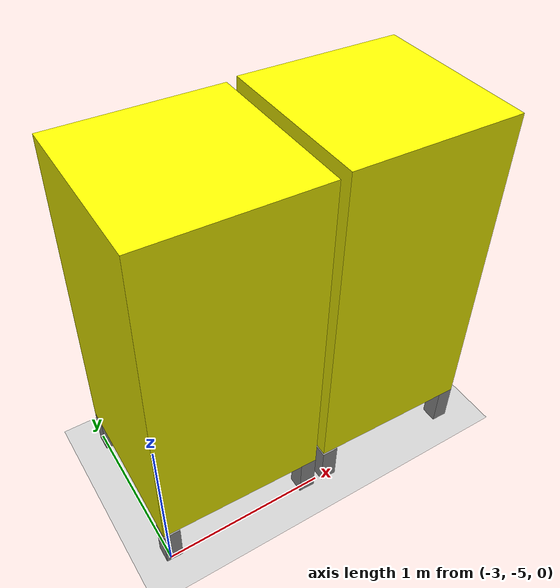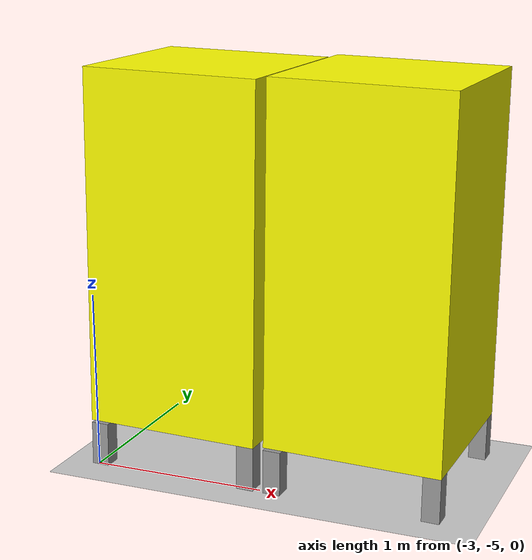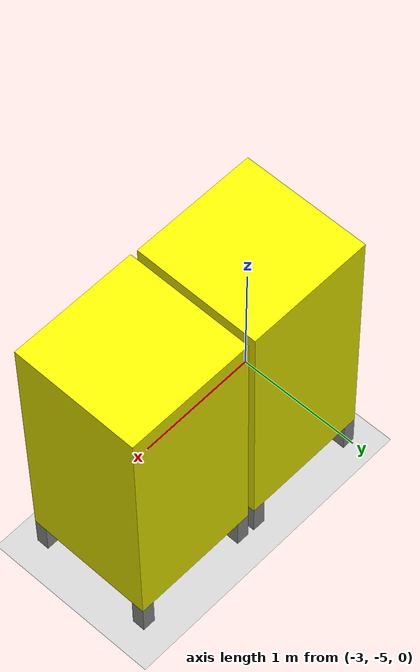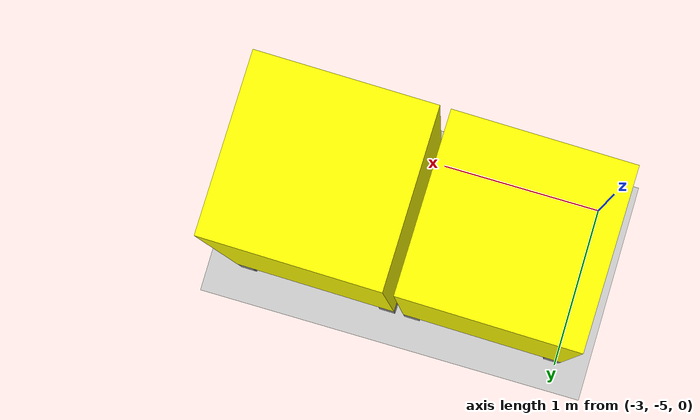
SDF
<sdf version="1.6">
 <world name="default">
  <model name="ground_plane">
   <static>1</static>
   <link name="link">
    <collision name="collision">
     <geometry><plane><normal>0 0 1</normal><size>100 100</size></plane></geometry>
     <surface>
      <contact><collide_bitmask>65535</collide_bitmask></contact>
      <friction><ode><mu>100</mu><mu2>50</mu2></ode></friction>
     </surface>
    </collision>
    <visual name="visual">
     <cast_shadows>0</cast_shadows>
     <geometry><plane><normal>0 0 1</normal><size>100 100</size></plane></geometry>
     <material>
      <script><uri>file://media/materials/scripts/gazebo.material</uri><name>Gazebo/Grey</name></script>
     </material>
    </visual>
   </link>
  </model>
  <model name="StoragePod_clone_4">
   <link name="link_2">
    <inertial>
     <mass>1</mass>
     <inertia>
      <ixx>0.166667</ixx>
      <ixy>0</ixy>
      <ixz>0</ixz>
      <iyy>0.166667</iyy>
      <iyz>0</iyz>
      <izz>0.166667</izz>
     </inertia>
    </inertial>
    <pose>-0.45 -0.45 -0.237 0 -0 0</pose>
    <visual name="visual">
     <geometry><box><size>0.1 0.1 0.25</size></box></geometry>
     <material>
      <lighting>1</lighting>
      <script><uri>file://media/materials/scripts/gazebo.material</uri><name>Gazebo/Grey</name></script>
      <shader type="pixel"><normal_map>__default__</normal_map></shader>
      <ambient>0.3 0.3 0.3 1</ambient>
      <diffuse>0.7 0.7 0.7 1</diffuse>
      <specular>0.01 0.01 0.01 1</specular>
      <emissive>0 0 0 1</emissive>
     </material>
    </visual>
    <collision name="collision">
     <geometry><box><size>0.1 0.1 0.25</size></box></geometry>
     <surface>
      <friction>
       <ode><mu>1</mu><mu2>1</mu2><fdir1>0 0 0</fdir1><slip1>0</slip1><slip2>0</slip2></ode>
       <torsional>
        <coefficient>1</coefficient>
        <patch_radius>0</patch_radius>
        <surface_radius>0</surface_radius>
        <use_patch_radius>1</use_patch_radius>
        <ode><slip>0</slip></ode>
       </torsional>
      </friction>
      <bounce><restitution_coefficient>0</restitution_coefficient><threshold>1e+06</threshold></bounce>
      <contact>
       <collide_without_contact>0</collide_without_contact>
       <collide_without_contact_bitmask>1</collide_without_contact_bitmask>
       <collide_bitmask>1</collide_bitmask>
       <ode>
        <soft_cfm>0</soft_cfm>
        <soft_erp>0.2</soft_erp>
        <kp>1e+13</kp>
        <kd>1</kd>
        <max_vel>0.01</max_vel>
        <min_depth>0</min_depth>
       </ode>
       <bullet>
        <split_impulse>1</split_impulse>
        <split_impulse_penetration_threshold>-0.01</split_impulse_penetration_threshold>
        <soft_cfm>0</soft_cfm>
        <soft_erp>0.2</soft_erp>
        <kp>1e+13</kp>
        <kd>1</kd>
       </bullet>
      </contact>
     </surface>
    </collision>
   </link>
   <link name="link_2_clone">
    <inertial>
     <mass>1</mass>
     <inertia>
      <ixx>0.166667</ixx>
      <ixy>0</ixy>
      <ixz>0</ixz>
      <iyy>0.166667</iyy>
      <iyz>0</iyz>
      <izz>0.166667</izz>
     </inertia>
    </inertial>
    <pose>0.45 0.45 -0.222 0 -0 0</pose>
    <visual name="visual">
     <geometry><box><size>0.1 0.1 0.25</size></box></geometry>
     <material>
      <lighting>1</lighting>
      <script><uri>file://media/materials/scripts/gazebo.material</uri><name>Gazebo/Grey</name></script>
      <shader type="pixel"><normal_map>__default__</normal_map></shader>
      <ambient>0.3 0.3 0.3 1</ambient>
      <diffuse>0.7 0.7 0.7 1</diffuse>
      <specular>0.01 0.01 0.01 1</specular>
      <emissive>0 0 0 1</emissive>
     </material>
    </visual>
    <collision name="collision">
     <geometry><box><size>0.1 0.1 0.25</size></box></geometry>
     <surface>
      <friction>
       <ode><mu>1</mu><mu2>1</mu2><fdir1>0 0 0</fdir1><slip1>0</slip1><slip2>0</slip2></ode>
       <torsional>
        <coefficient>1</coefficient>
        <patch_radius>0</patch_radius>
        <surface_radius>0</surface_radius>
        <use_patch_radius>1</use_patch_radius>
        <ode><slip>0</slip></ode>
       </torsional>
      </friction>
      <bounce><restitution_coefficient>0</restitution_coefficient><threshold>1e+06</threshold></bounce>
      <contact>
       <collide_without_contact>0</collide_without_contact>
       <collide_without_contact_bitmask>1</collide_without_contact_bitmask>
       <collide_bitmask>1</collide_bitmask>
       <ode>
        <soft_cfm>0</soft_cfm>
        <soft_erp>0.2</soft_erp>
        <kp>1e+13</kp>
        <kd>1</kd>
        <max_vel>0.01</max_vel>
        <min_depth>0</min_depth>
       </ode>
       <bullet>
        <split_impulse>1</split_impulse>
        <split_impulse_penetration_threshold>-0.01</split_impulse_penetration_threshold>
        <soft_cfm>0</soft_cfm>
        <soft_erp>0.2</soft_erp>
        <kp>1e+13</kp>
        <kd>1</kd>
       </bullet>
      </contact>
     </surface>
    </collision>
   </link>
   <link name="link_2_clone_0">
    <inertial>
     <mass>1</mass>
     <inertia>
      <ixx>0.166667</ixx>
      <ixy>0</ixy>
      <ixz>0</ixz>
      <iyy>0.166667</iyy>
      <iyz>0</iyz>
      <izz>0.166667</izz>
     </inertia>
    </inertial>
    <pose>0.45 -0.45 -0.222 0 -0 0</pose>
    <visual name="visual">
     <geometry><box><size>0.1 0.1 0.25</size></box></geometry>
     <material>
      <lighting>1</lighting>
      <script><uri>file://media/materials/scripts/gazebo.material</uri><name>Gazebo/Grey</name></script>
      <shader type="pixel"><normal_map>__default__</normal_map></shader>
      <ambient>0.3 0.3 0.3 1</ambient>
      <diffuse>0.7 0.7 0.7 1</diffuse>
      <specular>0.01 0.01 0.01 1</specular>
      <emissive>0 0 0 1</emissive>
     </material>
    </visual>
    <collision name="collision">
     <geometry><box><size>0.1 0.1 0.25</size></box></geometry>
     <surface>
      <friction>
       <ode><mu>1</mu><mu2>1</mu2><fdir1>0 0 0</fdir1><slip1>0</slip1><slip2>0</slip2></ode>
       <torsional>
        <coefficient>1</coefficient>
        <patch_radius>0</patch_radius>
        <surface_radius>0</surface_radius>
        <use_patch_radius>1</use_patch_radius>
        <ode><slip>0</slip></ode>
       </torsional>
      </friction>
      <bounce><restitution_coefficient>0</restitution_coefficient><threshold>1e+06</threshold></bounce>
      <contact>
       <collide_without_contact>0</collide_without_contact>
       <collide_without_contact_bitmask>1</collide_without_contact_bitmask>
       <collide_bitmask>1</collide_bitmask>
       <ode>
        <soft_cfm>0</soft_cfm>
        <soft_erp>0.2</soft_erp>
        <kp>1e+13</kp>
        <kd>1</kd>
        <max_vel>0.01</max_vel>
        <min_depth>0</min_depth>
       </ode>
       <bullet>
        <split_impulse>1</split_impulse>
        <split_impulse_penetration_threshold>-0.01</split_impulse_penetration_threshold>
        <soft_cfm>0</soft_cfm>
        <soft_erp>0.2</soft_erp>
        <kp>1e+13</kp>
        <kd>1</kd>
       </bullet>
      </contact>
     </surface>
    </collision>
   </link>
   <link name="link_2_clone_1">
    <inertial>
     <mass>1</mass>
     <inertia>
      <ixx>0.166667</ixx>
      <ixy>0</ixy>
      <ixz>0</ixz>
      <iyy>0.166667</iyy>
      <iyz>0</iyz>
      <izz>0.166667</izz>
     </inertia>
    </inertial>
    <pose>-0.45 0.45 -0.222 0 -0 0</pose>
    <visual name="visual">
     <geometry><box><size>0.1 0.1 0.25</size></box></geometry>
     <material>
      <lighting>1</lighting>
      <script><uri>file://media/materials/scripts/gazebo.material</uri><name>Gazebo/Grey</name></script>
      <shader type="pixel"><normal_map>__default__</normal_map></shader>
      <ambient>0.3 0.3 0.3 1</ambient>
      <diffuse>0.7 0.7 0.7 1</diffuse>
      <specular>0.01 0.01 0.01 1</specular>
      <emissive>0 0 0 1</emissive>
     </material>
    </visual>
    <collision name="collision">
     <geometry><box><size>0.1 0.1 0.25</size></box></geometry>
     <surface>
      <friction>
       <ode><mu>1</mu><mu2>1</mu2><fdir1>0 0 0</fdir1><slip1>0</slip1><slip2>0</slip2></ode>
       <torsional>
        <coefficient>1</coefficient>
        <patch_radius>0</patch_radius>
        <surface_radius>0</surface_radius>
        <use_patch_radius>1</use_patch_radius>
        <ode><slip>0</slip></ode>
       </torsional>
      </friction>
      <bounce><restitution_coefficient>0</restitution_coefficient><threshold>1e+06</threshold></bounce>
      <contact>
       <collide_without_contact>0</collide_without_contact>
       <collide_without_contact_bitmask>1</collide_without_contact_bitmask>
       <collide_bitmask>1</collide_bitmask>
       <ode>
        <soft_cfm>0</soft_cfm>
        <soft_erp>0.2</soft_erp>
        <kp>1e+13</kp>
        <kd>1</kd>
        <max_vel>0.01</max_vel>
        <min_depth>0</min_depth>
       </ode>
       <bullet>
        <split_impulse>1</split_impulse>
        <split_impulse_penetration_threshold>-0.01</split_impulse_penetration_threshold>
        <soft_cfm>0</soft_cfm>
        <soft_erp>0.2</soft_erp>
        <kp>1e+13</kp>
        <kd>1</kd>
       </bullet>
      </contact>
     </surface>
    </collision>
   </link>
   <link name="link_3">
    <inertial>
     <mass>1</mass>
     <inertia>
      <ixx>0.166667</ixx>
      <ixy>0</ixy>
      <ixz>0</ixz>
      <iyy>0.166667</iyy>
      <iyz>0</iyz>
      <izz>0.166667</izz>
     </inertia>
    </inertial>
    <pose>0 0 0.903 0 -0 0</pose>
    <visual name="visual">
     <geometry><box><size>1 1 2</size></box></geometry>
     <material>
      <lighting>1</lighting>
      <script><uri>file://media/materials/scripts/gazebo.material</uri><name>Gazebo/Grey</name></script>
      <shader type="pixel"><normal_map>__default__</normal_map></shader>
      <ambient>1 1 0 1</ambient>
      <diffuse>1 1 0 1</diffuse>
      <specular>0.01 0.01 0.01 1</specular>
      <emissive>0 0 0 1</emissive>
     </material>
    </visual>
    <collision name="collision">
     <geometry><box><size>1 1 2</size></box></geometry>
     <surface>
      <friction>
       <ode><mu>1</mu><mu2>1</mu2><fdir1>0 0 0</fdir1><slip1>0</slip1><slip2>0</slip2></ode>
       <torsional>
        <coefficient>1</coefficient>
        <patch_radius>0</patch_radius>
        <surface_radius>0</surface_radius>
        <use_patch_radius>1</use_patch_radius>
        <ode><slip>0</slip></ode>
       </torsional>
      </friction>
      <bounce><restitution_coefficient>0</restitution_coefficient><threshold>1e+06</threshold></bounce>
      <contact>
       <collide_without_contact>0</collide_without_contact>
       <collide_without_contact_bitmask>1</collide_without_contact_bitmask>
       <collide_bitmask>1</collide_bitmask>
       <ode>
        <soft_cfm>0</soft_cfm>
        <soft_erp>0.2</soft_erp>
        <kp>1e+13</kp>
        <kd>1</kd>
        <max_vel>0.01</max_vel>
        <min_depth>0</min_depth>
       </ode>
       <bullet>
        <split_impulse>1</split_impulse>
        <split_impulse_penetration_threshold>-0.01</split_impulse_penetration_threshold>
        <soft_cfm>0</soft_cfm>
        <soft_erp>0.2</soft_erp>
        <kp>1e+13</kp>
        <kd>1</kd>
       </bullet>
      </contact>
     </surface>
    </collision>
   </link>
   <joint name="link_3_JOINT_0" type="fixed">
    <parent>link_3</parent>
    <child>link_2_clone_0</child>
    <physics>
     <ode><limit><cfm>0</cfm><erp>0.2</erp></limit><suspension><cfm>0</cfm><erp>0.2</erp></suspension></ode>
    </physics>
   </joint>
   <joint name="link_3_JOINT_1" type="fixed">
    <parent>link_3</parent>
    <child>link_2</child>
    <physics>
     <ode><limit><cfm>0</cfm><erp>0.2</erp></limit><suspension><cfm>0</cfm><erp>0.2</erp></suspension></ode>
    </physics>
   </joint>
   <joint name="link_3_JOINT_2" type="fixed">
    <parent>link_3</parent>
    <child>link_2_clone</child>
    <physics>
     <ode><limit><cfm>0</cfm><erp>0.2</erp></limit><suspension><cfm>0</cfm><erp>0.2</erp></suspension></ode>
    </physics>
   </joint>
   <joint name="link_3_JOINT_3" type="fixed">
    <parent>link_3</parent>
    <child>link_2_clone_1</child>
    <physics>
     <ode><limit><cfm>0</cfm><erp>0.2</erp></limit><suspension><cfm>0</cfm><erp>0.2</erp></suspension></ode>
    </physics>
   </joint>
   <static>0</static>
   <pose>-2.52075 -4.5211 0.355283 -6.8e-05 0.016601 -0.012292</pose>
  </model>
  <model name="StoragePod_clone_5">
   <link name="link_2">
    <inertial>
     <mass>1</mass>
     <inertia>
      <ixx>0.166667</ixx>
      <ixy>0</ixy>
      <ixz>0</ixz>
      <iyy>0.166667</iyy>
      <iyz>0</iyz>
      <izz>0.166667</izz>
     </inertia>
    </inertial>
    <pose>-0.45 -0.45 -0.237 0 -0 0</pose>
    <visual name="visual">
     <geometry><box><size>0.1 0.1 0.25</size></box></geometry>
     <material>
      <lighting>1</lighting>
      <script><uri>file://media/materials/scripts/gazebo.material</uri><name>Gazebo/Grey</name></script>
      <shader type="pixel"><normal_map>__default__</normal_map></shader>
      <ambient>0.3 0.3 0.3 1</ambient>
      <diffuse>0.7 0.7 0.7 1</diffuse>
      <specular>0.01 0.01 0.01 1</specular>
      <emissive>0 0 0 1</emissive>
     </material>
    </visual>
    <collision name="collision">
     <geometry><box><size>0.1 0.1 0.25</size></box></geometry>
     <surface>
      <friction>
       <ode><mu>1</mu><mu2>1</mu2><fdir1>0 0 0</fdir1><slip1>0</slip1><slip2>0</slip2></ode>
       <torsional>
        <coefficient>1</coefficient>
        <patch_radius>0</patch_radius>
        <surface_radius>0</surface_radius>
        <use_patch_radius>1</use_patch_radius>
        <ode><slip>0</slip></ode>
       </torsional>
      </friction>
      <bounce><restitution_coefficient>0</restitution_coefficient><threshold>1e+06</threshold></bounce>
      <contact>
       <collide_without_contact>0</collide_without_contact>
       <collide_without_contact_bitmask>1</collide_without_contact_bitmask>
       <collide_bitmask>1</collide_bitmask>
       <ode>
        <soft_cfm>0</soft_cfm>
        <soft_erp>0.2</soft_erp>
        <kp>1e+13</kp>
        <kd>1</kd>
        <max_vel>0.01</max_vel>
        <min_depth>0</min_depth>
       </ode>
       <bullet>
        <split_impulse>1</split_impulse>
        <split_impulse_penetration_threshold>-0.01</split_impulse_penetration_threshold>
        <soft_cfm>0</soft_cfm>
        <soft_erp>0.2</soft_erp>
        <kp>1e+13</kp>
        <kd>1</kd>
       </bullet>
      </contact>
     </surface>
    </collision>
   </link>
   <link name="link_2_clone">
    <inertial>
     <mass>1</mass>
     <inertia>
      <ixx>0.166667</ixx>
      <ixy>0</ixy>
      <ixz>0</ixz>
      <iyy>0.166667</iyy>
      <iyz>0</iyz>
      <izz>0.166667</izz>
     </inertia>
    </inertial>
    <pose>0.45 0.45 -0.222 0 -0 0</pose>
    <visual name="visual">
     <geometry><box><size>0.1 0.1 0.25</size></box></geometry>
     <material>
      <lighting>1</lighting>
      <script><uri>file://media/materials/scripts/gazebo.material</uri><name>Gazebo/Grey</name></script>
      <shader type="pixel"><normal_map>__default__</normal_map></shader>
      <ambient>0.3 0.3 0.3 1</ambient>
      <diffuse>0.7 0.7 0.7 1</diffuse>
      <specular>0.01 0.01 0.01 1</specular>
      <emissive>0 0 0 1</emissive>
     </material>
    </visual>
    <collision name="collision">
     <geometry><box><size>0.1 0.1 0.25</size></box></geometry>
     <surface>
      <friction>
       <ode><mu>1</mu><mu2>1</mu2><fdir1>0 0 0</fdir1><slip1>0</slip1><slip2>0</slip2></ode>
       <torsional>
        <coefficient>1</coefficient>
        <patch_radius>0</patch_radius>
        <surface_radius>0</surface_radius>
        <use_patch_radius>1</use_patch_radius>
        <ode><slip>0</slip></ode>
       </torsional>
      </friction>
      <bounce><restitution_coefficient>0</restitution_coefficient><threshold>1e+06</threshold></bounce>
      <contact>
       <collide_without_contact>0</collide_without_contact>
       <collide_without_contact_bitmask>1</collide_without_contact_bitmask>
       <collide_bitmask>1</collide_bitmask>
       <ode>
        <soft_cfm>0</soft_cfm>
        <soft_erp>0.2</soft_erp>
        <kp>1e+13</kp>
        <kd>1</kd>
        <max_vel>0.01</max_vel>
        <min_depth>0</min_depth>
       </ode>
       <bullet>
        <split_impulse>1</split_impulse>
        <split_impulse_penetration_threshold>-0.01</split_impulse_penetration_threshold>
        <soft_cfm>0</soft_cfm>
        <soft_erp>0.2</soft_erp>
        <kp>1e+13</kp>
        <kd>1</kd>
       </bullet>
      </contact>
     </surface>
    </collision>
   </link>
   <link name="link_2_clone_0">
    <inertial>
     <mass>1</mass>
     <inertia>
      <ixx>0.166667</ixx>
      <ixy>0</ixy>
      <ixz>0</ixz>
      <iyy>0.166667</iyy>
      <iyz>0</iyz>
      <izz>0.166667</izz>
     </inertia>
    </inertial>
    <pose>0.45 -0.45 -0.222 0 -0 0</pose>
    <visual name="visual">
     <geometry><box><size>0.1 0.1 0.25</size></box></geometry>
     <material>
      <lighting>1</lighting>
      <script><uri>file://media/materials/scripts/gazebo.material</uri><name>Gazebo/Grey</name></script>
      <shader type="pixel"><normal_map>__default__</normal_map></shader>
      <ambient>0.3 0.3 0.3 1</ambient>
      <diffuse>0.7 0.7 0.7 1</diffuse>
      <specular>0.01 0.01 0.01 1</specular>
      <emissive>0 0 0 1</emissive>
     </material>
    </visual>
    <collision name="collision">
     <geometry><box><size>0.1 0.1 0.25</size></box></geometry>
     <surface>
      <friction>
       <ode><mu>1</mu><mu2>1</mu2><fdir1>0 0 0</fdir1><slip1>0</slip1><slip2>0</slip2></ode>
       <torsional>
        <coefficient>1</coefficient>
        <patch_radius>0</patch_radius>
        <surface_radius>0</surface_radius>
        <use_patch_radius>1</use_patch_radius>
        <ode><slip>0</slip></ode>
       </torsional>
      </friction>
      <bounce><restitution_coefficient>0</restitution_coefficient><threshold>1e+06</threshold></bounce>
      <contact>
       <collide_without_contact>0</collide_without_contact>
       <collide_without_contact_bitmask>1</collide_without_contact_bitmask>
       <collide_bitmask>1</collide_bitmask>
       <ode>
        <soft_cfm>0</soft_cfm>
        <soft_erp>0.2</soft_erp>
        <kp>1e+13</kp>
        <kd>1</kd>
        <max_vel>0.01</max_vel>
        <min_depth>0</min_depth>
       </ode>
       <bullet>
        <split_impulse>1</split_impulse>
        <split_impulse_penetration_threshold>-0.01</split_impulse_penetration_threshold>
        <soft_cfm>0</soft_cfm>
        <soft_erp>0.2</soft_erp>
        <kp>1e+13</kp>
        <kd>1</kd>
       </bullet>
      </contact>
     </surface>
    </collision>
   </link>
   <link name="link_2_clone_1">
    <inertial>
     <mass>1</mass>
     <inertia>
      <ixx>0.166667</ixx>
      <ixy>0</ixy>
      <ixz>0</ixz>
      <iyy>0.166667</iyy>
      <iyz>0</iyz>
      <izz>0.166667</izz>
     </inertia>
    </inertial>
    <pose>-0.45 0.45 -0.222 0 -0 0</pose>
    <visual name="visual">
     <geometry><box><size>0.1 0.1 0.25</size></box></geometry>
     <material>
      <lighting>1</lighting>
      <script><uri>file://media/materials/scripts/gazebo.material</uri><name>Gazebo/Grey</name></script>
      <shader type="pixel"><normal_map>__default__</normal_map></shader>
      <ambient>0.3 0.3 0.3 1</ambient>
      <diffuse>0.7 0.7 0.7 1</diffuse>
      <specular>0.01 0.01 0.01 1</specular>
      <emissive>0 0 0 1</emissive>
     </material>
    </visual>
    <collision name="collision">
     <geometry><box><size>0.1 0.1 0.25</size></box></geometry>
     <surface>
      <friction>
       <ode><mu>1</mu><mu2>1</mu2><fdir1>0 0 0</fdir1><slip1>0</slip1><slip2>0</slip2></ode>
       <torsional>
        <coefficient>1</coefficient>
        <patch_radius>0</patch_radius>
        <surface_radius>0</surface_radius>
        <use_patch_radius>1</use_patch_radius>
        <ode><slip>0</slip></ode>
       </torsional>
      </friction>
      <bounce><restitution_coefficient>0</restitution_coefficient><threshold>1e+06</threshold></bounce>
      <contact>
       <collide_without_contact>0</collide_without_contact>
       <collide_without_contact_bitmask>1</collide_without_contact_bitmask>
       <collide_bitmask>1</collide_bitmask>
       <ode>
        <soft_cfm>0</soft_cfm>
        <soft_erp>0.2</soft_erp>
        <kp>1e+13</kp>
        <kd>1</kd>
        <max_vel>0.01</max_vel>
        <min_depth>0</min_depth>
       </ode>
       <bullet>
        <split_impulse>1</split_impulse>
        <split_impulse_penetration_threshold>-0.01</split_impulse_penetration_threshold>
        <soft_cfm>0</soft_cfm>
        <soft_erp>0.2</soft_erp>
        <kp>1e+13</kp>
        <kd>1</kd>
       </bullet>
      </contact>
     </surface>
    </collision>
   </link>
   <link name="link_3">
    <inertial>
     <mass>1</mass>
     <inertia>
      <ixx>0.166667</ixx>
      <ixy>0</ixy>
      <ixz>0</ixz>
      <iyy>0.166667</iyy>
      <iyz>0</iyz>
      <izz>0.166667</izz>
     </inertia>
    </inertial>
    <pose>0 0 0.903 0 -0 0</pose>
    <visual name="visual">
     <geometry><box><size>1 1 2</size></box></geometry>
     <material>
      <lighting>1</lighting>
      <script><uri>file://media/materials/scripts/gazebo.material</uri><name>Gazebo/Grey</name></script>
      <shader type="pixel"><normal_map>__default__</normal_map></shader>
      <ambient>1 1 0 1</ambient>
      <diffuse>1 1 0 1</diffuse>
      <specular>0.01 0.01 0.01 1</specular>
      <emissive>0 0 0 1</emissive>
     </material>
    </visual>
    <collision name="collision">
     <geometry><box><size>1 1 2</size></box></geometry>
     <surface>
      <friction>
       <ode><mu>1</mu><mu2>1</mu2><fdir1>0 0 0</fdir1><slip1>0</slip1><slip2>0</slip2></ode>
       <torsional>
        <coefficient>1</coefficient>
        <patch_radius>0</patch_radius>
        <surface_radius>0</surface_radius>
        <use_patch_radius>1</use_patch_radius>
        <ode><slip>0</slip></ode>
       </torsional>
      </friction>
      <bounce><restitution_coefficient>0</restitution_coefficient><threshold>1e+06</threshold></bounce>
      <contact>
       <collide_without_contact>0</collide_without_contact>
       <collide_without_contact_bitmask>1</collide_without_contact_bitmask>
       <collide_bitmask>1</collide_bitmask>
       <ode>
        <soft_cfm>0</soft_cfm>
        <soft_erp>0.2</soft_erp>
        <kp>1e+13</kp>
        <kd>1</kd>
        <max_vel>0.01</max_vel>
        <min_depth>0</min_depth>
       </ode>
       <bullet>
        <split_impulse>1</split_impulse>
        <split_impulse_penetration_threshold>-0.01</split_impulse_penetration_threshold>
        <soft_cfm>0</soft_cfm>
        <soft_erp>0.2</soft_erp>
        <kp>1e+13</kp>
        <kd>1</kd>
       </bullet>
      </contact>
     </surface>
    </collision>
   </link>
   <joint name="link_3_JOINT_0" type="fixed">
    <parent>link_3</parent>
    <child>link_2_clone_0</child>
    <physics>
     <ode><limit><cfm>0</cfm><erp>0.2</erp></limit><suspension><cfm>0</cfm><erp>0.2</erp></suspension></ode>
    </physics>
   </joint>
   <joint name="link_3_JOINT_1" type="fixed">
    <parent>link_3</parent>
    <child>link_2</child>
    <physics>
     <ode><limit><cfm>0</cfm><erp>0.2</erp></limit><suspension><cfm>0</cfm><erp>0.2</erp></suspension></ode>
    </physics>
   </joint>
   <joint name="link_3_JOINT_2" type="fixed">
    <parent>link_3</parent>
    <child>link_2_clone</child>
    <physics>
     <ode><limit><cfm>0</cfm><erp>0.2</erp></limit><suspension><cfm>0</cfm><erp>0.2</erp></suspension></ode>
    </physics>
   </joint>
   <joint name="link_3_JOINT_3" type="fixed">
    <parent>link_3</parent>
    <child>link_2_clone_1</child>
    <physics>
     <ode><limit><cfm>0</cfm><erp>0.2</erp></limit><suspension><cfm>0</cfm><erp>0.2</erp></suspension></ode>
    </physics>
   </joint>
   <static>0</static>
   <pose>-1.46215 -4.53281 0.355285 -0.000166 0.016499 -0.012188</pose>
  </model>
 </world>
</sdf>
